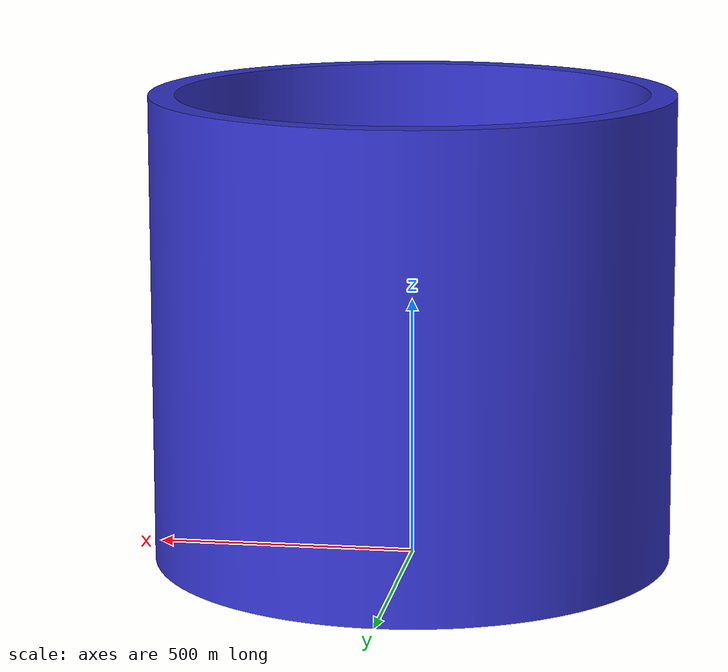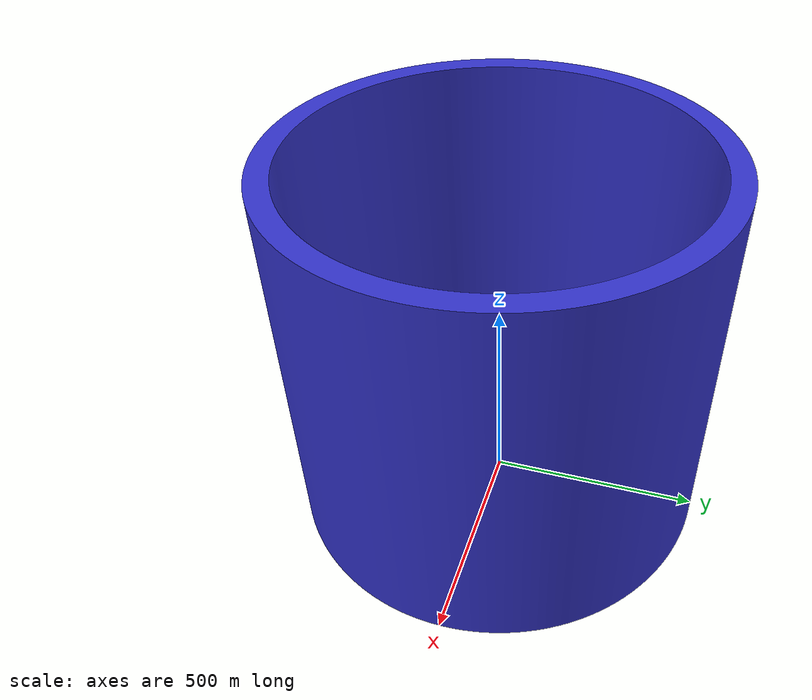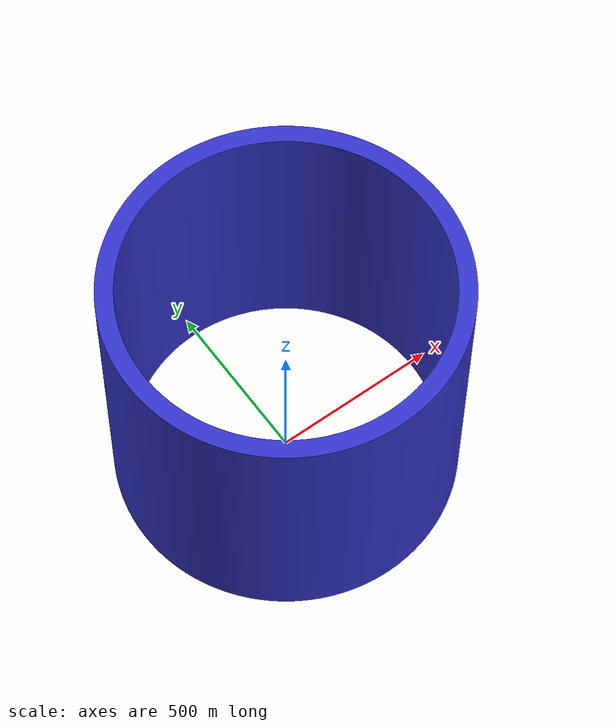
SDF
<?xml version="1.0" ?>
<sdf version="1.6">
  <world name="default">

    <!-- Light -->

    <!-- Ground plane -->

    <!-- Hollow Cylinder Mesh -->
    <model name="hollow_cylinder">
      <static>true</static>
      <link name="link">
        <visual name="visual">
          <geometry>
            <mesh>
              <uri>file:///home/nithish/robotic_arm_ws/src/Universal_Robots_ROS2_Description/meshes/ur10e/collision/bowl.stl</uri>
              <scale>1 1 1</scale>
            </mesh>
          </geometry>
          <material>
            <ambient>0.2 0.2 0.8 1</ambient>
            <diffuse>0.2 0.2 0.8 1</diffuse>
            <specular>0.1 0.1 0.1 1</specular>
          </material>
        </visual>

        <collision name="collision">
          <geometry>
            <mesh>
              <uri>file:///home/nithish/robotic_arm_ws/src/Universal_Robots_ROS2_Description/meshes/ur10e/collision/bowl.stl</uri>
              <scale>1 1 1</scale>
            </mesh>
          </geometry>
        </collision>
      </link>
    </model>

  </world>
</sdf>
